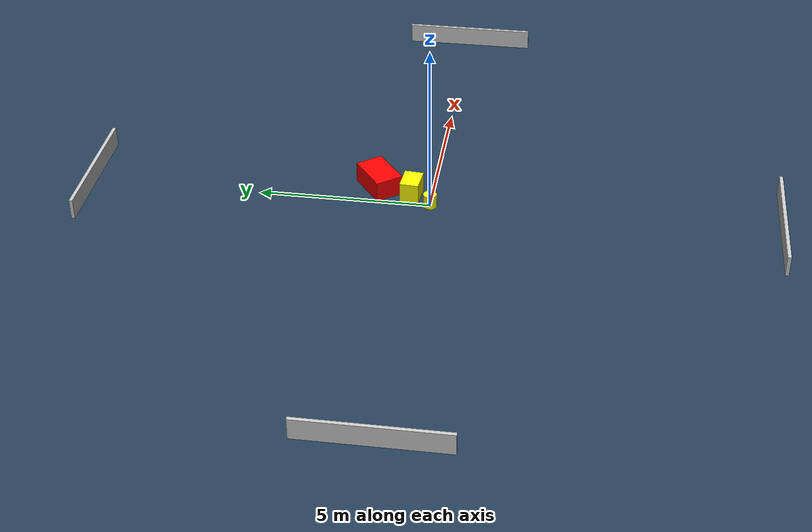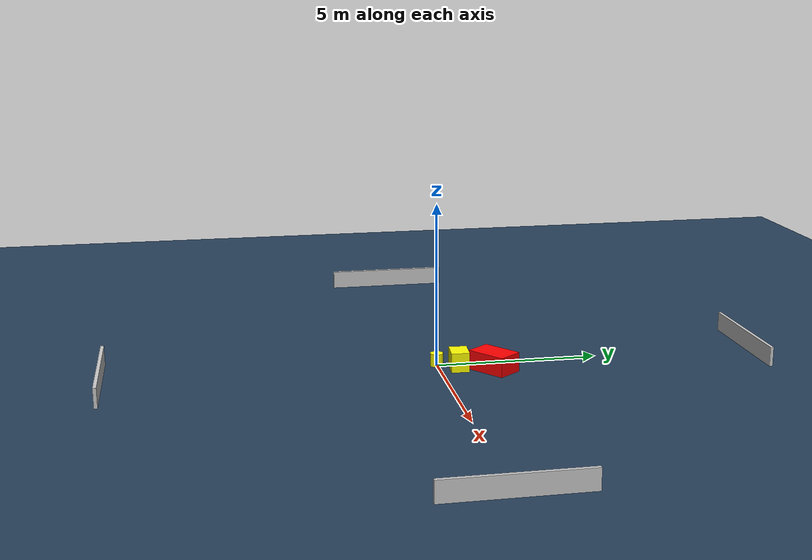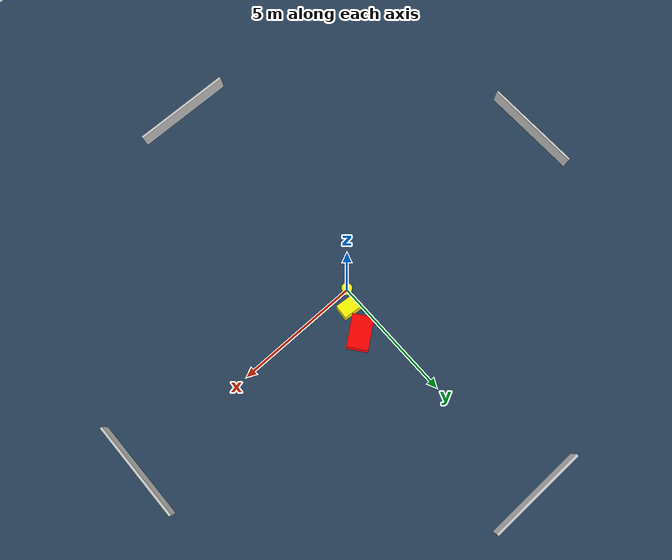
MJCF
<?xml version="1.0" ?>
<mujoco model="generated_environment">
  <option timestep="0.01" integrator="RK4" cone="elliptic"/>
  <default>
    <geom density="1"/>
  </default>
  <asset>
    <texture builtin="gradient" height="3072" name="skybox" rgb1="0.3 0.5 0.7" rgb2="0 0 0" type="skybox" width="512"/>
    <texture builtin="checker" height="300" name="groundplane" rgb1="0.2 0.3 0.4" rgb2="0.1 0.2 0.3" type="2d" width="300"/>
    <material name="groundplane" reflectance="0.2" texrepeat="5 5" texture="groundplane"/>
  </asset>
  <worldbody>
    <light dir="0 0 -1" directional="true" pos="0 0 1.5"/>
    <geom condim="3" friction="0.5 0.005 0.001" material="groundplane" name="floor" pos="0 0 0" size="0 0 0.05" type="plane"/>
    <body name="walls">
      <geom name="wall_1" condim="4" pos="-10.0 0.0 0.3" rgba="0.800000011920929 0.800000011920929 0.800000011920929 1.0" size="0.05 2.0 0.3" type="box"/>
      <geom name="wall_2" condim="4" pos="10.0 0.0 0.3" rgba="0.800000011920929 0.800000011920929 0.800000011920929 1.0" size="0.05 2.0 0.3" type="box"/>
      <geom name="wall_3" condim="4" pos="0.0 -10.0 0.3" rgba="0.800000011920929 0.800000011920929 0.800000011920929 1.0" size="2.0 0.05 0.3" type="box"/>
      <geom name="wall_4" condim="4" pos="0.0 10.0 0.3" rgba="0.800000011920929 0.800000011920929 0.800000011920929 1.0" size="2.0 0.05 0.3" type="box"/>
    </body>
    <body name="robot">
      <joint name="joint_x" type="slide" pos="0 0 0" axis="1 0 0"/>
      <joint name="joint_y" type="slide" pos="0 0 0" axis="0 1 0"/>
      <geom name="robot" type="cylinder" pos="0.0 0.0 0.2" size="0.2 0.2 0.0" mass="5.0" friction="1.0 0.005 0.0001" condim="4" rgba="1.0 1.0 0.0 1.0"/>
    </body>
    <body name="obstacle_1_movable">
      <geom name="obstacle_1_movable" condim="4" pos="0.44622536688367453 0.6031868911395747 0.3" euler="0 0 265.3293721255921" friction="0.0 0.005 0.001" rgba="1.0 1.0 0.0 1.0" size="0.2758574617919308 0.36992202865169393 0.3" type="box" mass="0.1"/>
      <joint type="free"/>
    </body>
    <body name="obstacle_2_static">
      <geom name="obstacle_2_static" condim="4" pos="0.7761385752695491 1.6079894689769674 0.3" euler="0 0 127.64776634249165" friction="0.0 0.005 0.001" rgba="1.0 0.0 0.0 1.0" size="0.4143695509491932 0.638498144405484 0.3" type="box"/>
    </body>
  </worldbody>
  <actuator>
    <motor name="actuator_x" joint="joint_x" gear="1" ctrlrange="-1 1"/>
    <motor name="actuator_y" joint="joint_y" gear="1" ctrlrange="-1 1"/>
  </actuator>
</mujoco>
